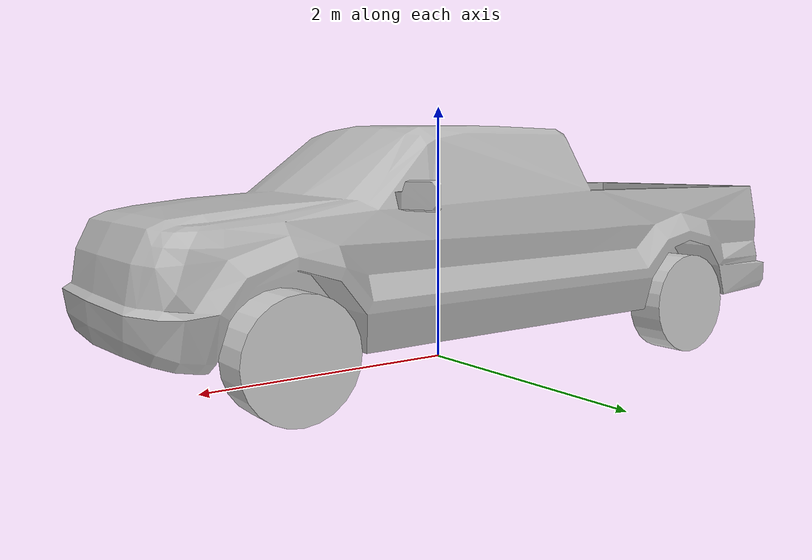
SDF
<?xml version="1.0" ?>
<sdf version="1.6">
  <model name="pickup">
    <link name="base_link">
      <inertial>
        <pose>0 0 0 0 0 0</pose>
        <mass>2300.0</mass>
        <inertia>
          <ixx>54.0</ixx>
          <ixy>0</ixy>
          <ixz>0</ixz>
          <iyy>252.0</iyy>
          <iyz>0</iyz>
          <izz>252.0</izz>
        </inertia>
      </inertial>
      <collision name="collision">
        <pose>0 0 0 0 0 -1.57079632679</pose>
        <geometry>
          <mesh>
            <uri>model://pickup/meshes/pickup_no_wheels.dae</uri>
          </mesh>
        </geometry>
      </collision>
      <visual name="visual">
        <pose>0 0 0 0 0 -1.57079632679</pose>
        <geometry>
          <mesh>
            <uri>model://pickup/meshes/pickup_no_wheels.dae</uri>
          </mesh>
        </geometry>
      </visual>
    </link>

    <joint name="servo_c" type="revolute">
      <parent>base_link</parent>
      <child>FrontCenterWheelSteering</child>
      <pose relative_to="base_link">1.78 0 0.4 0 0 0</pose>
      <axis>
        <xyz>0 0 1</xyz>
        <limit>
          <lower>-1.57079</lower>
          <upper>1.57079</upper>
          <velocity>10.0</velocity>
          <effort>500.0</effort>
        </limit>
        <use_parent_model_frame>1</use_parent_model_frame>
      </axis>
    </joint>
    <link name="FrontCenterWheelSteering">
      <pose relative_to="servo_c">0 0 0 0 0 0</pose>
      <inertial>
        <mass>0.005</mass>
        <inertia>
          <ixx>0.0000018</ixx>
          <iyy>0.0000018</iyy>
          <izz>0.0000018</izz>
        </inertia>
      </inertial>
    </link>
    <joint name="FrontCenterWheelJoint" type="revolute">
      <parent>FrontCenterWheelSteering</parent>
      <child>FrontCenterWheel</child>
      <pose relative_to="servo_c" degrees="true">0 0 0 -90 0 0</pose>
      <axis>
        <xyz>0 1 0</xyz>
        <limit>
          <lower>-1.79769e+308</lower>
          <upper>1.79769e+308</upper>
          <velocity>50.0</velocity>
        </limit>
        <dynamics>
          <spring_reference>0</spring_reference>
          <spring_stiffness>0</spring_stiffness>
        </dynamics>
        <use_parent_model_frame>1</use_parent_model_frame>
      </axis>
    </joint>
    <link name="FrontCenterWheel">
      <pose relative_to="FrontCenterWheelJoint">0 0 0 0 0 0</pose>
      <inertial>
        <mass>.05</mass>
        <inertia>
          <ixx>0.00003331</ixx>
          <ixy>0</ixy>
          <ixz>0</ixz>
          <iyy>0.0000204</iyy>
          <iyz>0</iyz>
          <izz>0.0000204</izz>
        </inertia>
      </inertial>
      <gravity>true</gravity>
      <velocity_decay/>
      <collision name="FrontCenterWheelCollision">
        <pose relative_to="FrontCenterWheelJoint">0 0.0 0 0 0 0</pose>
        <geometry>
          <cylinder>
            <length>0.3</length>
            <radius>0.4</radius>
          </cylinder>
        </geometry>
        <surface>
          <contact>
            <ode>
              <max_vel>100.0</max_vel>
              <min_depth>0.001</min_depth>
            </ode>
          </contact>
          <friction>
            <ode>
              <mu>1.0</mu>
              <mu2>1.0</mu2>
              <fdir1>1 0 0</fdir1>
            </ode>
          </friction>
        </surface>
      </collision>
    </link>

    <joint name="servo_0" type="revolute">
      <parent>base_link</parent>
      <child>FrontLeftWheelSteering</child>
      <pose relative_to="base_link">1.78 0.95 0.4 0 0 0</pose>
      <axis>
        <xyz>0 0 1</xyz>
        <limit>
          <lower>-0.0</lower>
          <upper>0.0</upper>
          <velocity>0.0</velocity>
          <effort>0.0</effort>
        </limit>
        <use_parent_model_frame>1</use_parent_model_frame>
      </axis>
    </joint>
    <joint name="servo_1" type="revolute">
      <parent>base_link</parent>
      <child>FrontRightWheelSteering</child>
      <pose relative_to="base_link">1.78 -0.95 0.4 0 0 0</pose>
      <axis>
        <xyz>0 0 1</xyz>
        <limit>
          <lower>-0.0</lower>
          <upper>0.0</upper>
          <velocity>0.0</velocity>
          <effort>0.0</effort>
        </limit>
        <use_parent_model_frame>1</use_parent_model_frame>
      </axis>
    </joint>

    <link name="FrontLeftWheelSteering">
      <pose relative_to="servo_0">0 0 0 0 0 0</pose>
      <inertial>
        <mass>0.005</mass>
        <inertia>
          <ixx>0.0000018</ixx>
          <iyy>0.0000018</iyy>
          <izz>0.0000018</izz>
        </inertia>
      </inertial>
    </link>
    <link name="FrontRightWheelSteering">
      <pose relative_to="servo_1">0 0 0 0 0 0</pose>
      <inertial>
        <mass>0.005</mass>
        <inertia>
          <ixx>0.0000018</ixx>
          <iyy>0.0000018</iyy>
          <izz>0.0000018</izz>
        </inertia>
      </inertial>
    </link>

    <joint name="FrontLeftWheelJoint" type="revolute">
      <parent>FrontLeftWheelSteering</parent>
      <child>FrontLeftWheel</child>
      <pose relative_to="servo_0" degrees="true">0 0 0 -90 0 0</pose>
      <axis>
        <xyz>0 1 0</xyz>
        <limit>
          <lower>-1.79769e+308</lower>
          <upper>1.79769e+308</upper>
          <velocity>50.0</velocity>
        </limit>
        <dynamics>
          <spring_reference>0</spring_reference>
          <spring_stiffness>0</spring_stiffness>
        </dynamics>
        <use_parent_model_frame>1</use_parent_model_frame>
      </axis>
    </joint>
    <joint name="FrontRightWheelJoint" type="revolute">
      <parent>FrontRightWheelSteering</parent>
      <child>FrontRightWheel</child>
      <pose relative_to="servo_1" degrees="true">0 0 0 90 0 0</pose>
      <axis>
        <xyz>0 1 0</xyz>
        <limit>
          <lower>-1.79769e+308</lower>
          <upper>1.79769e+308</upper>
          <velocity>50.0</velocity>
        </limit>
        <dynamics>
          <spring_reference>0</spring_reference>
          <spring_stiffness>0</spring_stiffness>
        </dynamics>
        <use_parent_model_frame>1</use_parent_model_frame>
      </axis>
    </joint>

    <joint name="RearLeftWheelJoint" type="revolute">
      <parent>base_link</parent>
      <child>RearLeftWheel</child>
      <pose relative_to="base_link" degrees="true">-1.78 0.95 0.4 -90 0 0</pose>
      <axis>
        <xyz>0 1 0</xyz>
        <limit>
          <lower>-1.79769e+308</lower>
          <upper>1.79769e+308</upper>
          <velocity>50.0</velocity>
        </limit>
        <dynamics>
          <spring_reference>0</spring_reference>
          <spring_stiffness>0</spring_stiffness>
        </dynamics>
        <use_parent_model_frame>1</use_parent_model_frame>
      </axis>
    </joint>
    <joint name="RearRightWheelJoint" type="revolute">
      <parent>base_link</parent>
      <child>RearRightWheel</child>
      <pose relative_to="base_link" degrees="true">-1.78 -0.95 0.4 90 0 0</pose>
      <axis>
        <xyz>0 1 0</xyz>
        <limit>
          <lower>-1.79769e+308</lower>
          <upper>1.79769e+308</upper>
          <velocity>50.0</velocity>
        </limit>
        <dynamics>
          <spring_reference>0</spring_reference>
          <spring_stiffness>0</spring_stiffness>
        </dynamics>
        <use_parent_model_frame>1</use_parent_model_frame>
      </axis>
    </joint>

    <link name="FrontLeftWheel">
      <pose relative_to="FrontLeftWheelJoint">0 0 0 0 0 0</pose>
      <inertial>
        <mass>.05</mass>
        <inertia>
          <ixx>0.00003331</ixx>
          <ixy>0</ixy>
          <ixz>0</ixz>
          <iyy>0.0000204</iyy>
          <iyz>0</iyz>
          <izz>0.0000204</izz>
        </inertia>
      </inertial>
      <gravity>true</gravity>
      <velocity_decay/>
      <visual name="FrontLeftWheelVisual">
        <pose relative_to="FrontLeftWheelJoint">0 0.0 0 0 0 0</pose>
        <geometry>
          <cylinder>
            <length>0.3</length>
            <radius>0.4</radius>
          </cylinder>
        </geometry>
        <material>
          <ambient>0.8 0.8 0.8 1</ambient>
          <diffuse>0.8 0.8 0.8 1</diffuse>
          <specular>0 0 0 0</specular>
          <pbr>
            <metal>
              <albedo_map>materials/textures/tire4.jpg</albedo_map>
            </metal>
          </pbr>
        </material>
      </visual>
      <collision name="FrontLeftWheelCollision">
        <pose relative_to="FrontLeftWheelJoint">0 0.0 0 0 0 0</pose>
        <geometry>
          <cylinder>
            <length>0.3</length>
            <radius>0.4</radius>
          </cylinder>
        </geometry>
        <surface>
          <contact>
            <ode>
              <max_vel>100.0</max_vel>
              <min_depth>0.001</min_depth>
            </ode>
          </contact>
          <friction>
            <ode>
              <mu>1.0</mu>
              <mu2>1.0</mu2>
              <fdir1>1 0 0</fdir1>
            </ode>
          </friction>
        </surface>
      </collision>
    </link>

    <link name="FrontRightWheel">
      <pose relative_to="FrontRightWheelJoint">0 0 0 0 0 0</pose>
      <inertial>
        <mass>.05</mass>
        <inertia>
          <ixx>0.00003331</ixx>
          <ixy>0</ixy>
          <ixz>0</ixz>
          <iyy>0.0000204</iyy>
          <iyz>0</iyz>
          <izz>0.0000204</izz>
        </inertia>
      </inertial>
      <gravity>true</gravity>
      <velocity_decay/>
      <visual name="FrontRightWheelVisual">
        <pose relative_to="FrontRightWheelJoint">0 -0.0 0 0 0 0</pose>
        <geometry>
          <cylinder>
            <length>0.3</length>
            <radius>0.4</radius>
          </cylinder>
        </geometry>
        <material>
          <ambient>0.8 0.8 0.8 1</ambient>
          <diffuse>0.8 0.8 0.8 1</diffuse>
          <specular>0 0 0 0</specular>
          <pbr>
            <metal>
              <albedo_map>materials/textures/tire4.jpg</albedo_map>
            </metal>
          </pbr>
        </material>
      </visual>
      <collision name="FrontRightWheelCollision">
        <pose relative_to="FrontRightWheelJoint">0 -0.0 0 0 0 0</pose>
        <geometry>
          <cylinder>
            <length>0.3</length>
            <radius>0.4</radius>
          </cylinder>
        </geometry>
        <surface>
          <contact>
            <ode>
              <max_vel>100.0</max_vel>
              <min_depth>0.001</min_depth>
            </ode>
          </contact>
          <friction>
            <ode>
              <mu>1.0</mu>
              <mu2>1.0</mu2>
              <fdir1>1 0 0</fdir1>
            </ode>
          </friction>
        </surface>
      </collision>
    </link>

    <link name="RearLeftWheel">
      <pose relative_to="RearLeftWheelJoint">0 0 0 0 0 0</pose>
      <inertial>
        <mass>.05</mass>
        <inertia>
          <ixx>0.00003331</ixx>
          <ixy>0</ixy>
          <ixz>0</ixz>
          <iyy>0.0000204</iyy>
          <iyz>0</iyz>
          <izz>0.0000204</izz>
        </inertia>
      </inertial>
      <gravity>true</gravity>
      <velocity_decay/>
      <visual name="RearLeftWheelVisual">
        <pose relative_to="RearLeftWheelJoint">0 0.0 0 0 0 0</pose>
        <geometry>
          <cylinder>
            <length>0.3</length>
            <radius>0.4</radius>
          </cylinder>
        </geometry>
        <material>
          <ambient>0.8 0.8 0.8 1</ambient>
          <diffuse>0.8 0.8 0.8 1</diffuse>
          <specular>0 0 0 0</specular>
          <pbr>
            <metal>
              <albedo_map>materials/textures/tire4.jpg</albedo_map>
            </metal>
          </pbr>
        </material>
      </visual>
      <collision name="RearLeftWheelCollision">
        <pose relative_to="RearLeftWheelJoint">0 0.0 0 0 0 0</pose>
        <geometry>
          <cylinder>
            <length>0.3</length>
            <radius>0.4</radius>
          </cylinder>
        </geometry>
        <surface>
          <contact>
            <ode>
              <max_vel>100.0</max_vel>
              <min_depth>0.001</min_depth>
            </ode>
          </contact>
          <friction>
            <ode>
              <mu>1.0</mu>
              <mu2>1.0</mu2>
              <fdir1>1 0 0</fdir1>
            </ode>
          </friction>
        </surface>
      </collision>
    </link>

    <link name="RearRightWheel">
      <pose relative_to="RearRightWheelJoint">0 0 0 0 0 0</pose>
      <inertial>
        <mass>.05</mass>
        <inertia>
          <ixx>0.00003331</ixx>
          <ixy>0</ixy>
          <ixz>0</ixz>
          <iyy>0.0000204</iyy>
          <iyz>0</iyz>
          <izz>0.0000204</izz>
        </inertia>
      </inertial>
      <gravity>true</gravity>
      <velocity_decay/>
      <visual name="RearRightWheelVisual">
        <pose relative_to="RearRightWheelJoint">0 -0.0 0 0 0 0</pose>
        <geometry>
          <cylinder>
            <length>0.3</length>
            <radius>0.4</radius>
          </cylinder>
        </geometry>
        <material>
          <ambient>0.8 0.8 0.8 1</ambient>
          <diffuse>0.8 0.8 0.8 1</diffuse>
          <specular>0 0 0 0</specular>
          <pbr>
            <metal>
              <albedo_map>materials/textures/tire4.jpg</albedo_map>
            </metal>
          </pbr>
        </material>
      </visual>
      <collision name="RearRightWheelCollision">
        <pose relative_to="RearRightWheelJoint">0 -0.0 0 0 0 0</pose>
        <geometry>
          <cylinder>
            <length>0.3</length>
            <radius>0.4</radius>
          </cylinder>
        </geometry>
        <surface>
          <contact>
            <ode>
              <max_vel>100.0</max_vel>
              <min_depth>0.001</min_depth>
            </ode>
          </contact>
          <friction>
            <ode>
              <mu>1.0</mu>
              <mu2>1.0</mu2>
              <fdir1>1 0 0</fdir1>
            </ode>
          </friction>
        </surface>
      </collision>
    </link>

    <plugin filename="ackerman-controller" name="AckermanController">
      <left_joint>RearLeftWheelJoint</left_joint>
      <right_joint>RearRightWheelJoint</right_joint>
      <left_steering_joint>servo_c</left_steering_joint>
      <right_steering_joint>servo_c</right_steering_joint>
      <wheel_separation>1.9</wheel_separation>
      <kingpin_width>0.0</kingpin_width>
      <wheel_base>3.56</wheel_base>
      <steering_limit>0.785</steering_limit>
      <wheel_radius>0.4</wheel_radius>
      <min_velocity>-0.5</min_velocity>
      <max_velocity>0.5</max_velocity>
      <min_acceleration>-6</min_acceleration>
      <max_acceleration>4</max_acceleration>
      <steer_p_gain>100.0</steer_p_gain>
    </plugin>

    <plugin filename="drive-to-pose-controller" name="DriveToPoseController">
      <linear_p_gain>1.0</linear_p_gain>
      <angular_p_gain>10.0</angular_p_gain>
    </plugin>

  </model>
</sdf>
